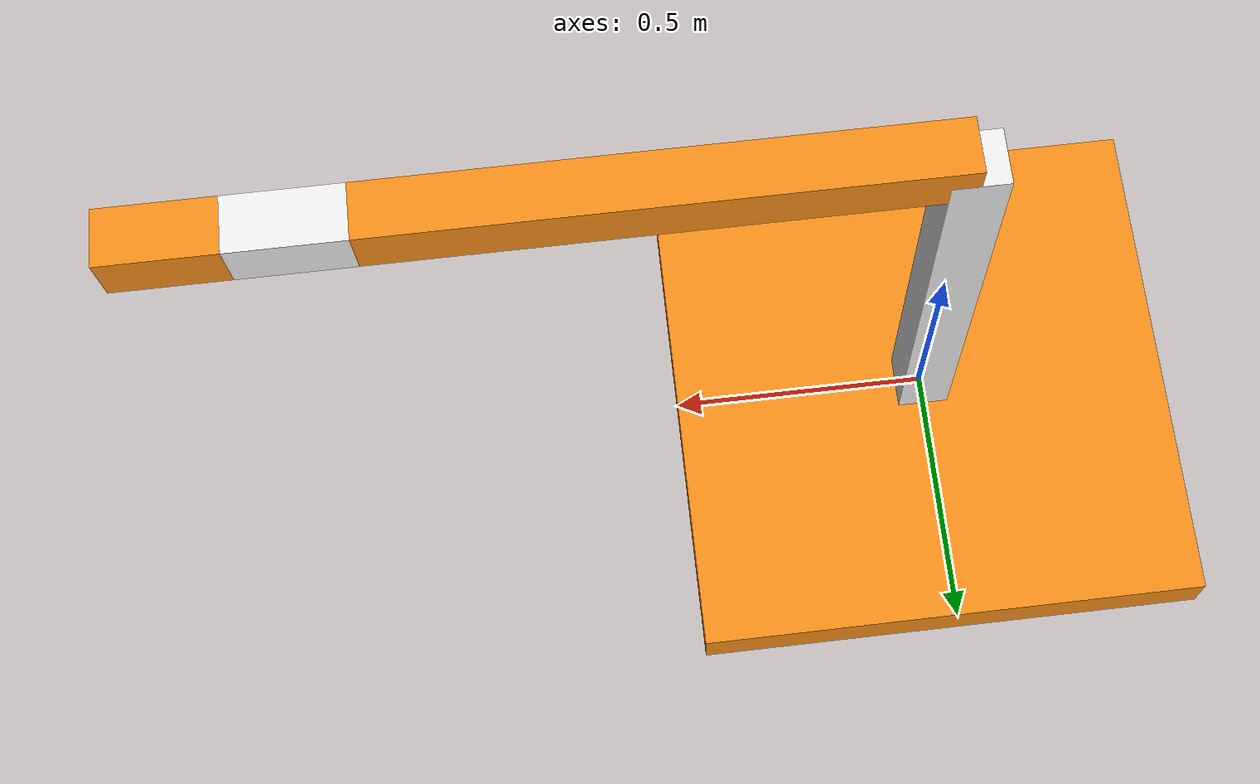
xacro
<?xml version="1.0"?>
<!-- Revolute-Revolute Manipulator -->
<robot name="rrbot" xmlns:xacro="http://www.ros.org/wiki/xacro">

  <!-- Constants for robot dimensions -->
  <xacro:property name="PI" value="3.1415926535897931"/>
  <xacro:property name="mass" value="1" /> <!-- arbitrary value for mass -->
  <xacro:property name="width" value="0.1" /> <!-- Square dimensions (widthxwidth) of beams -->
  <xacro:property name="boxwidth" value="1" /> <!-- Square dimensions (widthxwidth) of beams -->
  <xacro:property name="boxheight" value="0.1" /> <!-- Square dimensions (widthxwidth) of beams -->
  <xacro:property name="width3" value="0.1" /> <!-- Square dimensions (widthxwidth) of beams -->
  <xacro:property name="length1" value="0" /> <!-- Link 1 -->
  <xacro:property name="length2" value="1" /> <!-- Link 2 -->
  <xacro:property name="length3" value="1" /> <!-- Link 3 -->
  <xacro:property name="length4" value="0.2" /> <!-- Link 4 -->
  <xacro:property name="length5" value="0.2" /> <!-- Link 5 -->
  <xacro:property name="camera_link" value="0.05" /> <!-- Size of square 'camera' box -->
  <xacro:property name="axel_offset" value="0.05" /> <!-- Space btw top of beam and the each joint -->

  <!-- Import all Gazebo-customization elements, including Gazebo colors -->
  <xacro:include filename="$(find rover_description)/urdf/hal.gazebo" />
  <!-- Import Rviz colors -->
  <xacro:include filename="$(find rover_description)/urdf/materials.xacro" />

  <!-- Used for fixing robot to Gazebo 'base_link' -->
  <link name="world"/>

  <joint name="fixed" type="fixed">
    <parent link="world"/>
    <child link="link1"/>
  </joint>

  <!-- Base Link -->
  <link name="link1">

    <visual>
      <origin xyz="0 0 ${-boxheight/2}" rpy="0 0 0"/>
      <geometry>
	<box size="${boxwidth} ${boxwidth} ${boxheight}"/>
      </geometry>
      <material name="orange"/>
    </visual>

    <inertial>
      <origin xyz="0 0 ${-boxheight/2}" rpy="0 0 0"/>
      <mass value="${mass}"/>
      <inertia
	  ixx="${mass / 12.0 * (boxwidth*boxwidth + boxheight*boxheight)}" ixy="0.0" ixz="0.0"
	  iyy="${mass / 12.0 * (boxheight*boxheight + boxwidth*boxwidth)}" iyz="0.0"
	  izz="${mass / 12.0 * (boxwidth*boxwidth + boxheight*boxheight)}"/>
    </inertial>
  </link>

  <joint name="joint1" type="continuous">
    <parent link="link1"/>
    <child link="link2"/>
    <origin xyz="0 0 0" rpy="0 0 0"/>
    <axis xyz="0 0 1"/>
    <dynamics damping="0.7"/>
  </joint>

  <!-- Zero Length Link -->
  <link name="link2">
    <collision>
      <origin xyz="0 0 ${length1/2}" rpy="0 0 0"/>
      <geometry>
	<box size="${width} ${width} ${length1}"/>
      </geometry>
    </collision>

    <visual>
      <origin xyz="0 0 ${length1/2}" rpy="0 0 0"/>
      <geometry>
	<box size="${width} ${width} ${length1}"/>
      </geometry>
      <material name="black"/>
    </visual>

    <inertial>
      <origin xyz="0 0 ${length1/2}" rpy="0 0 0"/>
      <mass value="${mass}"/>
      <inertia
	  ixx="${mass / 12.0 * (width*width + length1*length1)}" ixy="0.0" ixz="0.0"
	  iyy="${mass / 12.0 * (length1*length1 + width*width)}" iyz="0.0"
	  izz="${mass / 12.0 * (width*width + width*width)}"/>
    </inertial>
  </link>

  <joint name="joint2" type="continuous">
    <parent link="link2"/>
    <child link="link3"/>
    <origin xyz="0 0 ${length1}" rpy="0 0 0"/>
    <axis xyz="0 1 0"/>
    <dynamics damping="0.7"/>
  </joint>

  <!-- First Arm -->
  <link name="link3">
    <collision>
      <origin xyz="0 0 ${length2/2}" rpy="0 0 0"/>
      <geometry>
	<box size="${width} ${width} ${length2}"/>
      </geometry>
    </collision>

    <visual>
      <origin xyz="0 0 ${length2/2}" rpy="0 0 0"/>
      <geometry>
	<box size="${width} ${width} ${length2}"/>
      </geometry>
      <material name="white"/>
    </visual>

    <inertial>
      <origin xyz="0 0 ${length2/2}" rpy="0 0 0"/>
      <mass value="${mass}"/>
      <inertia
	  ixx="${mass / 12.0 * (width*width + length2*length2)}" ixy="0.0" ixz="0.0"
	  iyy="${mass / 12.0 * (length2*length2 + width*width)}" iyz="0.0"
	  izz="${mass / 12.0 * (width*width + width*width)}"/>
    </inertial>
  </link>

  <joint name="joint3" type="continuous">
    <parent link="link3"/>
    <child link="link4"/>
    <origin xyz="0 0 ${length2}" rpy="0 0 0"/>
    <axis xyz="0 1 0"/>
    <dynamics damping="0.7"/>
  </joint>

<!-- Zero Length 2 -->
  <link name="link4">
    <collision>
      <origin xyz="${length1/2} 0 0" rpy="0 0 0"/>
      <geometry>
	<box size="${width} ${width} ${length1}"/>
      </geometry>
    </collision>

    <visual>
      <origin xyz="${length1/2} 0 0" rpy="0 0 0"/>
      <geometry>
	<box size="${width} ${width} ${length1}"/>
      </geometry>
      <material name="white"/>
    </visual>

    <inertial>
      <origin xyz="${length1/2} 0 0" rpy="0 0 0"/>
      <mass value="${mass}"/>
      <inertia
	  ixx="${mass / 12.0 * (width*width + length1*length1)}" ixy="0.0" ixz="0.0"
	  iyy="${mass / 12.0 * (length1*length1 + width*width)}" iyz="0.0"
	  izz="${mass / 12.0 * (width*width + width*width)}"/>
    </inertial>
  </link>

  <joint name="joint4" type="continuous">
    <parent link="link4"/>
    <child link="link5"/>
    <origin xyz="${length1} 0 0" rpy="0 0 0"/>
    <axis xyz="1 0 0"/>
    <dynamics damping="0.7"/>
  </joint>

  <!-- Second Arm -->
  <link name="link5">
    <collision>
      <origin xyz="${length3/2} 0 0" rpy="0 0 0"/>
      <geometry>
	<box size="${length3} ${width} ${width}"/>
      </geometry>
    </collision>

    <visual>
      <origin xyz="${length3/2} 0 0" rpy="0 0 0"/>
      <geometry>
	<box size="${length3} ${width} ${width}"/>
      </geometry>
      <material name="orange"/>
    </visual>

    <inertial>
      <origin xyz="${length3/2} 0 0" rpy="0 0 0"/>
      <mass value="${mass}"/>
      <inertia
	  izz="${mass / 12.0 * (width*width + length3*length3)}" ixy="0.0" ixz="0.0"
	  iyy="${mass / 12.0 * (length3*length3 + width*width)}" iyz="0.0"
	  ixx="${mass / 12.0 * (width*width + width*width)}"/>
    </inertial>
  </link>

  <joint name="joint5" type="continuous">
    <parent link="link5"/>
    <child link="link6"/>
    <origin xyz="${length3} 0 0" rpy="0 0 0"/>
    <axis xyz="0 1 0"/>
    <dynamics damping="0.7"/>
  </joint>

   <!-- Third Link -->
  <link name="link6">
    <collision>
      <origin xyz="${length4/2} 0 0" rpy="0 0 0"/>
      <geometry>
	<box size="${length4} ${width} ${width}"/>
      </geometry>
    </collision>

    <visual>
      <origin xyz="${length4/2} 0 0" rpy="0 0 0"/>
      <geometry>
	<box size="${length4} ${width} ${width}"/>
      </geometry>
      <material name="white"/>
    </visual>

    <inertial>
      <origin xyz="${length4/2} 0 0" rpy="0 0 0"/>
      <mass value="${mass}"/>
      <inertia
	  izz="${mass / 12.0 * (width*width + length4*length4)}" ixy="0.0" ixz="0.0"
	  iyy="${mass / 12.0 * (length4*length4 + width*width)}" iyz="0.0"
	  ixx="${mass / 12.0 * (width*width + width*width)}"/>
    </inertial>
  </link>

  <joint name="joint6" type="continuous">
    <parent link="link6"/>
    <child link="link7"/>
    <origin xyz="${length5} 0 0" rpy="0 0 0"/>
    <axis xyz="1 0 0"/>
    <dynamics damping="0.7"/>
  </joint>

   <!-- Fourth Link -->
  <link name="link7">
    <collision>
      <origin xyz="${length5/2} 0 0" rpy="0 0 0"/>
      <geometry>
	<box size="${length5} ${width} ${width}"/>
      </geometry>
    </collision>

    <visual>
      <origin xyz="${length5/2} 0 0" rpy="0 0 0"/>
      <geometry>
	<box size="${length5} ${width} ${width}"/>
      </geometry>
      <material name="orange"/>
    </visual>

    <inertial>
      <origin xyz="${length5/2} 0 0" rpy="0 0 0"/>
      <mass value="${mass}"/>
      <inertia
	  izz="${mass / 12.0 * (width*width + length5*length5)}" ixy="0.0" ixz="0.0"
	  iyy="${mass / 12.0 * (length5*length5 + width*width)}" iyz="0.0"
	  ixx="${mass / 12.0 * (width*width + width*width)}"/>
    </inertial>
  </link>
</robot>
